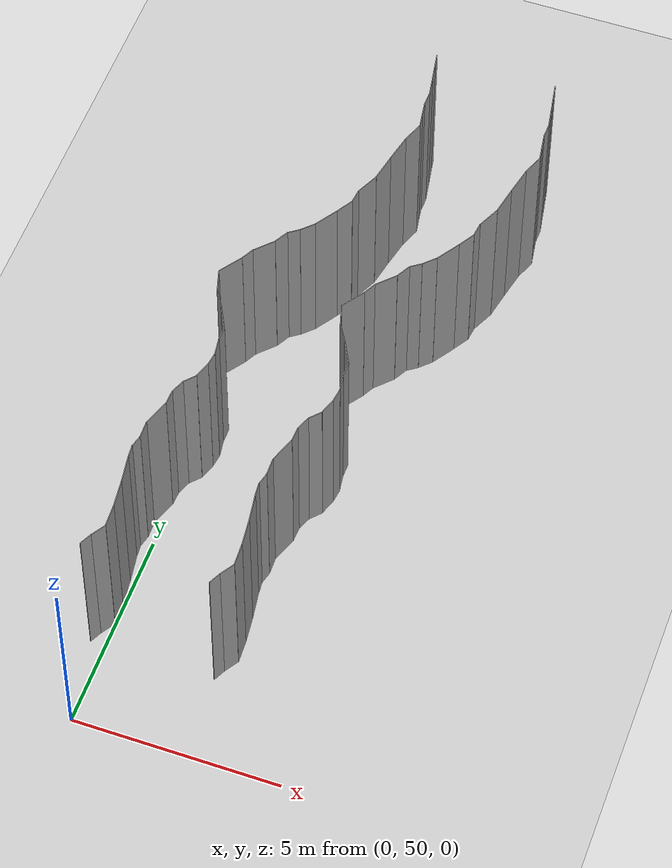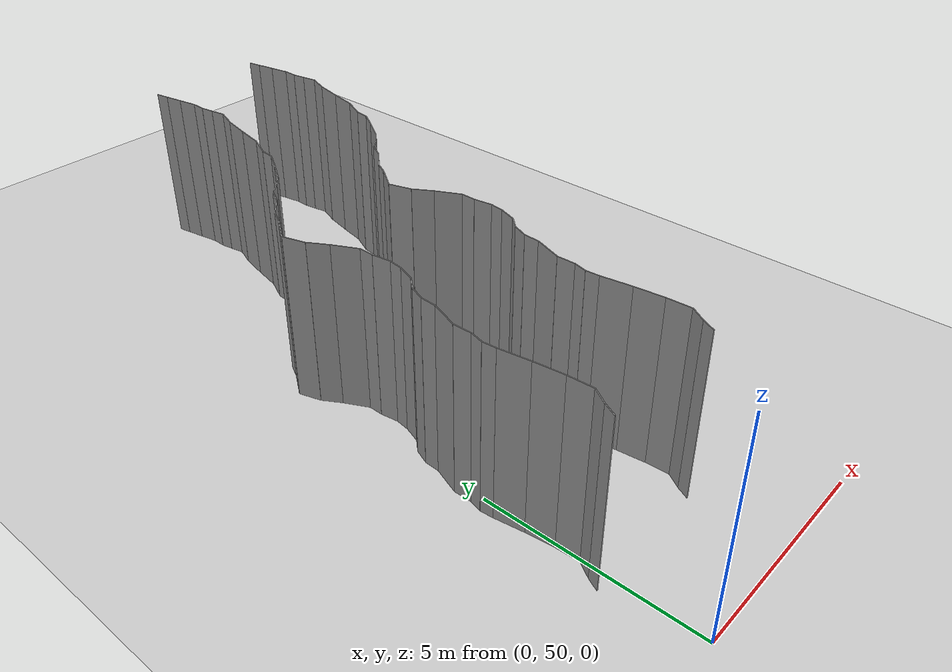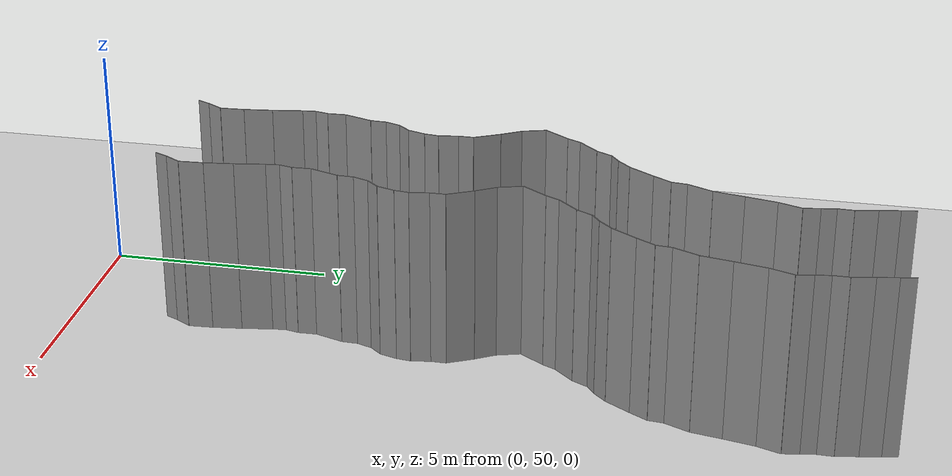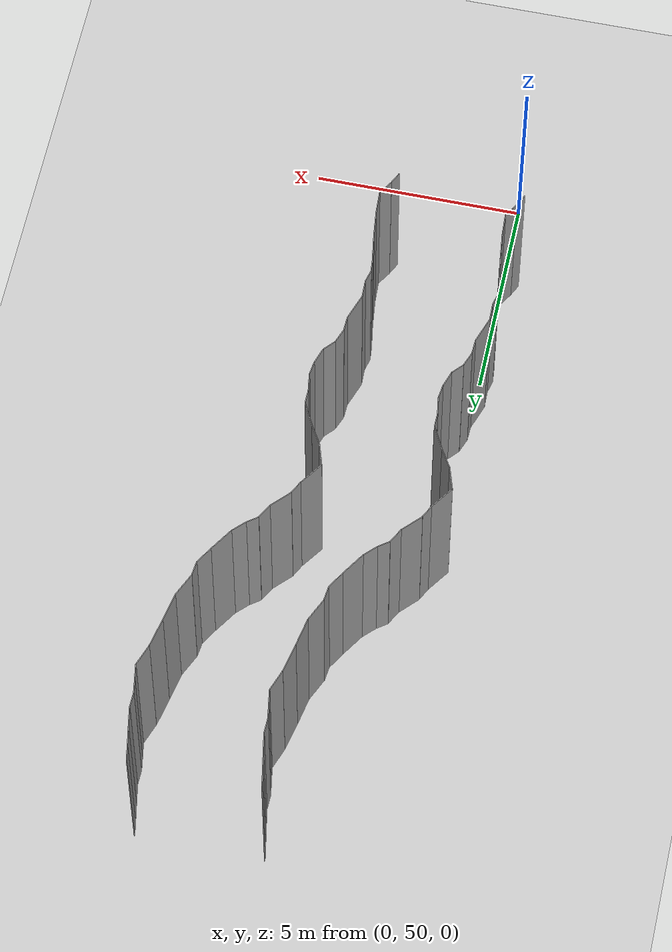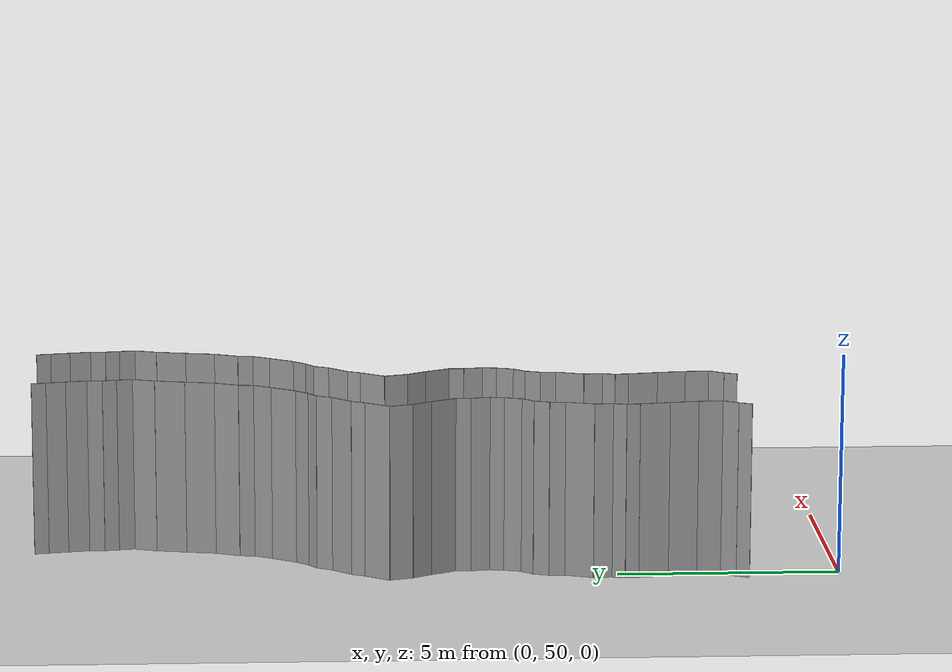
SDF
<sdf version="1.6">
 <world name="default">
  <model name="ground_plane">
   <static>1</static>
   <link name="link">
    <collision name="collision">
     <geometry><plane><normal>0 0 1</normal><size>200 200</size></plane></geometry>
     <surface><friction><ode><mu>100</mu><mu2>50</mu2></ode></friction></surface>
    </collision>
    <visual name="visual">
     <cast_shadows>0</cast_shadows>
     <geometry><plane><normal>0 0 1</normal><size>200 200</size></plane></geometry>
     <material>
      <script><uri>file://media/materials/scripts/gazebo.material</uri><name>Gazebo/Grey</name></script>
     </material>
    </visual>
   </link>
   <pose>0 100 0 0 -0 0</pose>
  </model>
  <model name="wall_224">
   <static>1</static>
   <pose>-0.30631447499122855 52.20543328603099 2 0 0 -0.44490276500342574</pose>
   <link name="link">
    <collision name="collision"><geometry><box><size>0.02 0.315287526318 4</size></box></geometry></collision>
    <visual name="visual">
     <material>
      <script><name>Gazebo/Grey</name><uri>file://media/materials/scripts/gazebo.material</uri></script>
     </material>
     <geometry><box><size>0.02 0.315287526318 4</size></box></geometry>
    </visual>
   </link>
  </model>
  <model name="wall_225">
   <static>1</static>
   <pose>2.6936855250087715 52.20543328603099 2 0 0 -0.44490276500342574</pose>
   <link name="link">
    <collision name="collision"><geometry><box><size>0.02 0.315287526318 4</size></box></geometry></collision>
    <visual name="visual">
     <material>
      <script><name>Gazebo/Grey</name><uri>file://media/materials/scripts/gazebo.material</uri></script>
     </material>
     <geometry><box><size>0.02 0.315287526318 4</size></box></geometry>
    </visual>
   </link>
  </model>
  <model name="wall_226">
   <static>1</static>
   <pose>-0.1345310852878407 52.51512437972214 2 0 0 -0.5556609495730785</pose>
   <link name="link">
    <collision name="collision"><geometry><box><size>0.02 0.394074899969 4</size></box></geometry></collision>
    <visual name="visual">
     <material>
      <script><name>Gazebo/Grey</name><uri>file://media/materials/scripts/gazebo.material</uri></script>
     </material>
     <geometry><box><size>0.02 0.394074899969 4</size></box></geometry>
    </visual>
   </link>
  </model>
  <model name="wall_227">
   <static>1</static>
   <pose>2.8654689147121593 52.51512437972214 2 0 0 -0.5556609495730785</pose>
   <link name="link">
    <collision name="collision"><geometry><box><size>0.02 0.394074899969 4</size></box></geometry></collision>
    <visual name="visual">
     <material>
      <script><name>Gazebo/Grey</name><uri>file://media/materials/scripts/gazebo.material</uri></script>
     </material>
     <geometry><box><size>0.02 0.394074899969 4</size></box></geometry>
    </visual>
   </link>
  </model>
  <model name="wall_228">
   <static>1</static>
   <pose>-0.04447228178769152 52.95406146435189 2 0 0 0.051068622639602185</pose>
   <link name="link">
    <collision name="collision"><geometry><box><size>0.02 0.543796018046 4</size></box></geometry></collision>
    <visual name="visual">
     <material>
      <script><name>Gazebo/Grey</name><uri>file://media/materials/scripts/gazebo.material</uri></script>
     </material>
     <geometry><box><size>0.02 0.543796018046 4</size></box></geometry>
    </visual>
   </link>
  </model>
  <model name="wall_229">
   <static>1</static>
   <pose>2.9555277182123083 52.95406146435189 2 0 0 0.051068622639602185</pose>
   <link name="link">
    <collision name="collision"><geometry><box><size>0.02 0.543796018046 4</size></box></geometry></collision>
    <visual name="visual">
     <material>
      <script><name>Gazebo/Grey</name><uri>file://media/materials/scripts/gazebo.material</uri></script>
     </material>
     <geometry><box><size>0.02 0.543796018046 4</size></box></geometry>
    </visual>
   </link>
  </model>
  <model name="wall_230">
   <static>1</static>
   <pose>-0.09727875012426282 53.54970367523044 2 0 0 0.1195360058832946</pose>
   <link name="link">
    <collision name="collision"><geometry><box><size>0.02 0.65285609305 4</size></box></geometry></collision>
    <visual name="visual">
     <material>
      <script><name>Gazebo/Grey</name><uri>file://media/materials/scripts/gazebo.material</uri></script>
     </material>
     <geometry><box><size>0.02 0.65285609305 4</size></box></geometry>
    </visual>
   </link>
  </model>
  <model name="wall_231">
   <static>1</static>
   <pose>2.902721249875737 53.54970367523044 2 0 0 0.1195360058832946</pose>
   <link name="link">
    <collision name="collision"><geometry><box><size>0.02 0.65285609305 4</size></box></geometry></collision>
    <visual name="visual">
     <material>
      <script><name>Gazebo/Grey</name><uri>file://media/materials/scripts/gazebo.material</uri></script>
     </material>
     <geometry><box><size>0.02 0.65285609305 4</size></box></geometry>
    </visual>
   </link>
  </model>
  <model name="wall_232">
   <static>1</static>
   <pose>-0.1903085652665202 54.21314556334102 2 0 0 0.1581031226667219</pose>
   <link name="link">
    <collision name="collision"><geometry><box><size>0.02 0.687258094835 4</size></box></geometry></collision>
    <visual name="visual">
     <material>
      <script><name>Gazebo/Grey</name><uri>file://media/materials/scripts/gazebo.material</uri></script>
     </material>
     <geometry><box><size>0.02 0.687258094835 4</size></box></geometry>
    </visual>
   </link>
  </model>
  <model name="wall_233">
   <static>1</static>
   <pose>2.80969143473348 54.21314556334102 2 0 0 0.1581031226667219</pose>
   <link name="link">
    <collision name="collision"><geometry><box><size>0.02 0.687258094835 4</size></box></geometry></collision>
    <visual name="visual">
     <material>
      <script><name>Gazebo/Grey</name><uri>file://media/materials/scripts/gazebo.material</uri></script>
     </material>
     <geometry><box><size>0.02 0.687258094835 4</size></box></geometry>
    </visual>
   </link>
  </model>
  <model name="wall_234">
   <static>1</static>
   <pose>-0.25813525373899315 54.70388334746676 2 0 0 0.09040292227828031</pose>
   <link name="link">
    <collision name="collision"><geometry><box><size>0.02 0.304030680901 4</size></box></geometry></collision>
    <visual name="visual">
     <material>
      <script><name>Gazebo/Grey</name><uri>file://media/materials/scripts/gazebo.material</uri></script>
     </material>
     <geometry><box><size>0.02 0.304030680901 4</size></box></geometry>
    </visual>
   </link>
  </model>
  <model name="wall_235">
   <static>1</static>
   <pose>2.741864746261007 54.70388334746676 2 0 0 0.09040292227828031</pose>
   <link name="link">
    <collision name="collision"><geometry><box><size>0.02 0.304030680901 4</size></box></geometry></collision>
    <visual name="visual">
     <material>
      <script><name>Gazebo/Grey</name><uri>file://media/materials/scripts/gazebo.material</uri></script>
     </material>
     <geometry><box><size>0.02 0.304030680901 4</size></box></geometry>
    </visual>
   </link>
  </model>
  <model name="wall_236">
   <static>1</static>
   <pose>-0.23547214054974813 55.00139825774106 2 0 0 -0.24405704668673625</pose>
   <link name="link">
    <collision name="collision"><geometry><box><size>0.02 0.301165523449 4</size></box></geometry></collision>
    <visual name="visual">
     <material>
      <script><name>Gazebo/Grey</name><uri>file://media/materials/scripts/gazebo.material</uri></script>
     </material>
     <geometry><box><size>0.02 0.301165523449 4</size></box></geometry>
    </visual>
   </link>
  </model>
  <model name="wall_237">
   <static>1</static>
   <pose>2.764527859450252 55.00139825774106 2 0 0 -0.24405704668673625</pose>
   <link name="link">
    <collision name="collision"><geometry><box><size>0.02 0.301165523449 4</size></box></geometry></collision>
    <visual name="visual">
     <material>
      <script><name>Gazebo/Grey</name><uri>file://media/materials/scripts/gazebo.material</uri></script>
     </material>
     <geometry><box><size>0.02 0.301165523449 4</size></box></geometry>
    </visual>
   </link>
  </model>
  <model name="wall_238">
   <static>1</static>
   <pose>-0.20504507567004446 55.356972045786776 2 0 0 0.028447180192829245</pose>
   <link name="link">
    <collision name="collision"><geometry><box><size>0.02 0.419076464054 4</size></box></geometry></collision>
    <visual name="visual">
     <material>
      <script><name>Gazebo/Grey</name><uri>file://media/materials/scripts/gazebo.material</uri></script>
     </material>
     <geometry><box><size>0.02 0.419076464054 4</size></box></geometry>
    </visual>
   </link>
  </model>
  <model name="wall_239">
   <static>1</static>
   <pose>2.7949549243299554 55.356972045786776 2 0 0 0.028447180192829245</pose>
   <link name="link">
    <collision name="collision"><geometry><box><size>0.02 0.419076464054 4</size></box></geometry></collision>
    <visual name="visual">
     <material>
      <script><name>Gazebo/Grey</name><uri>file://media/materials/scripts/gazebo.material</uri></script>
     </material>
     <geometry><box><size>0.02 0.419076464054 4</size></box></geometry>
    </visual>
   </link>
  </model>
  <model name="wall_240">
   <static>1</static>
   <pose>-0.10310642699677183 55.88046405516422 2 0 0 -0.33094759338901847</pose>
   <link name="link">
    <collision name="collision"><geometry><box><size>0.02 0.664115428585 4</size></box></geometry></collision>
    <visual name="visual">
     <material>
      <script><name>Gazebo/Grey</name><uri>file://media/materials/scripts/gazebo.material</uri></script>
     </material>
     <geometry><box><size>0.02 0.664115428585 4</size></box></geometry>
    </visual>
   </link>
  </model>
  <model name="wall_241">
   <static>1</static>
   <pose>2.8968935730032284 55.88046405516422 2 0 0 -0.33094759338901847</pose>
   <link name="link">
    <collision name="collision"><geometry><box><size>0.02 0.664115428585 4</size></box></geometry></collision>
    <visual name="visual">
     <material>
      <script><name>Gazebo/Grey</name><uri>file://media/materials/scripts/gazebo.material</uri></script>
     </material>
     <geometry><box><size>0.02 0.664115428585 4</size></box></geometry>
    </visual>
   </link>
  </model>
  <model name="wall_242">
   <static>1</static>
   <pose>0.01165887520163297 56.37254960566524 2 0 0 -0.038547598866512316</pose>
   <link name="link">
    <collision name="collision"><geometry><box><size>0.02 0.356358717609 4</size></box></geometry></collision>
    <visual name="visual">
     <material>
      <script><name>Gazebo/Grey</name><uri>file://media/materials/scripts/gazebo.material</uri></script>
     </material>
     <geometry><box><size>0.02 0.356358717609 4</size></box></geometry>
    </visual>
   </link>
  </model>
  <model name="wall_243">
   <static>1</static>
   <pose>3.011658875201633 56.37254960566524 2 0 0 -0.038547598866512316</pose>
   <link name="link">
    <collision name="collision"><geometry><box><size>0.02 0.356358717609 4</size></box></geometry></collision>
    <visual name="visual">
     <material>
      <script><name>Gazebo/Grey</name><uri>file://media/materials/scripts/gazebo.material</uri></script>
     </material>
     <geometry><box><size>0.02 0.356358717609 4</size></box></geometry>
    </visual>
   </link>
  </model>
  <model name="wall_244">
   <static>1</static>
   <pose>0.08224375856012531 56.72075654767262 2 0 0 -0.3582976981876601</pose>
   <link name="link">
    <collision name="collision"><geometry><box><size>0.02 0.363397392349 4</size></box></geometry></collision>
    <visual name="visual">
     <material>
      <script><name>Gazebo/Grey</name><uri>file://media/materials/scripts/gazebo.material</uri></script>
     </material>
     <geometry><box><size>0.02 0.363397392349 4</size></box></geometry>
    </visual>
   </link>
  </model>
  <model name="wall_245">
   <static>1</static>
   <pose>3.0822437585601254 56.72075654767262 2 0 0 -0.3582976981876601</pose>
   <link name="link">
    <collision name="collision"><geometry><box><size>0.02 0.363397392349 4</size></box></geometry></collision>
    <visual name="visual">
     <material>
      <script><name>Gazebo/Grey</name><uri>file://media/materials/scripts/gazebo.material</uri></script>
     </material>
     <geometry><box><size>0.02 0.363397392349 4</size></box></geometry>
    </visual>
   </link>
  </model>
  <model name="wall_246">
   <static>1</static>
   <pose>0.260150449192972 57.01874354561907 2 0 0 -0.7291036465761354</pose>
   <link name="link">
    <collision name="collision"><geometry><box><size>0.02 0.342804707853 4</size></box></geometry></collision>
    <visual name="visual">
     <material>
      <script><name>Gazebo/Grey</name><uri>file://media/materials/scripts/gazebo.material</uri></script>
     </material>
     <geometry><box><size>0.02 0.342804707853 4</size></box></geometry>
    </visual>
   </link>
  </model>
  <model name="wall_247">
   <static>1</static>
   <pose>3.260150449192972 57.01874354561907 2 0 0 -0.7291036465761354</pose>
   <link name="link">
    <collision name="collision"><geometry><box><size>0.02 0.342804707853 4</size></box></geometry></collision>
    <visual name="visual">
     <material>
      <script><name>Gazebo/Grey</name><uri>file://media/materials/scripts/gazebo.material</uri></script>
     </material>
     <geometry><box><size>0.02 0.342804707853 4</size></box></geometry>
    </visual>
   </link>
  </model>
  <model name="wall_248">
   <static>1</static>
   <pose>0.4374313532592991 57.34035171740209 2 0 0 -0.3147617840066052</pose>
   <link name="link">
    <collision name="collision"><geometry><box><size>0.02 0.407586923402 4</size></box></geometry></collision>
    <visual name="visual">
     <material>
      <script><name>Gazebo/Grey</name><uri>file://media/materials/scripts/gazebo.material</uri></script>
     </material>
     <geometry><box><size>0.02 0.407586923402 4</size></box></geometry>
    </visual>
   </link>
  </model>
  <model name="wall_249">
   <static>1</static>
   <pose>3.4374313532592993 57.34035171740209 2 0 0 -0.3147617840066052</pose>
   <link name="link">
    <collision name="collision"><geometry><box><size>0.02 0.407586923402 4</size></box></geometry></collision>
    <visual name="visual">
     <material>
      <script><name>Gazebo/Grey</name><uri>file://media/materials/scripts/gazebo.material</uri></script>
     </material>
     <geometry><box><size>0.02 0.407586923402 4</size></box></geometry>
    </visual>
   </link>
  </model>
  <model name="wall_250">
   <static>1</static>
   <pose>0.5214094997647015 57.69442478421184 2 0 0 -0.12956813423015023</pose>
   <link name="link">
    <collision name="collision"><geometry><box><size>0.02 0.323293810488 4</size></box></geometry></collision>
    <visual name="visual">
     <material>
      <script><name>Gazebo/Grey</name><uri>file://media/materials/scripts/gazebo.material</uri></script>
     </material>
     <geometry><box><size>0.02 0.323293810488 4</size></box></geometry>
    </visual>
   </link>
  </model>
  <model name="wall_251">
   <static>1</static>
   <pose>3.5214094997647014 57.69442478421184 2 0 0 -0.12956813423015023</pose>
   <link name="link">
    <collision name="collision"><geometry><box><size>0.02 0.323293810488 4</size></box></geometry></collision>
    <visual name="visual">
     <material>
      <script><name>Gazebo/Grey</name><uri>file://media/materials/scripts/gazebo.material</uri></script>
     </material>
     <geometry><box><size>0.02 0.323293810488 4</size></box></geometry>
    </visual>
   </link>
  </model>
  <model name="wall_252">
   <static>1</static>
   <pose>0.5095628894035702 58.06960914433923 2 0 0 0.15115781658733884</pose>
   <link name="link">
    <collision name="collision"><geometry><box><size>0.02 0.434742020015 4</size></box></geometry></collision>
    <visual name="visual">
     <material>
      <script><name>Gazebo/Grey</name><uri>file://media/materials/scripts/gazebo.material</uri></script>
     </material>
     <geometry><box><size>0.02 0.434742020015 4</size></box></geometry>
    </visual>
   </link>
  </model>
  <model name="wall_253">
   <static>1</static>
   <pose>3.50956288940357 58.06960914433923 2 0 0 0.15115781658733884</pose>
   <link name="link">
    <collision name="collision"><geometry><box><size>0.02 0.434742020015 4</size></box></geometry></collision>
    <visual name="visual">
     <material>
      <script><name>Gazebo/Grey</name><uri>file://media/materials/scripts/gazebo.material</uri></script>
     </material>
     <geometry><box><size>0.02 0.434742020015 4</size></box></geometry>
    </visual>
   </link>
  </model>
  <model name="wall_254">
   <static>1</static>
   <pose>0.4778656257593741 58.45483736449687 2 0 0 -0.006076639507662194</pose>
   <link name="link">
    <collision name="collision"><geometry><box><size>0.02 0.340677902417 4</size></box></geometry></collision>
    <visual name="visual">
     <material>
      <script><name>Gazebo/Grey</name><uri>file://media/materials/scripts/gazebo.material</uri></script>
     </material>
     <geometry><box><size>0.02 0.340677902417 4</size></box></geometry>
    </visual>
   </link>
  </model>
  <model name="wall_255">
   <static>1</static>
   <pose>3.477865625759374 58.45483736449687 2 0 0 -0.006076639507662194</pose>
   <link name="link">
    <collision name="collision"><geometry><box><size>0.02 0.340677902417 4</size></box></geometry></collision>
    <visual name="visual">
     <material>
      <script><name>Gazebo/Grey</name><uri>file://media/materials/scripts/gazebo.material</uri></script>
     </material>
     <geometry><box><size>0.02 0.340677902417 4</size></box></geometry>
    </visual>
   </link>
  </model>
  <model name="wall_256">
   <static>1</static>
   <pose>0.3364900619468557 58.9031493179931 2 0 0 0.47344899576483884</pose>
   <link name="link">
    <collision name="collision"><geometry><box><size>0.02 0.624664807607 4</size></box></geometry></collision>
    <visual name="visual">
     <material>
      <script><name>Gazebo/Grey</name><uri>file://media/materials/scripts/gazebo.material</uri></script>
     </material>
     <geometry><box><size>0.02 0.624664807607 4</size></box></geometry>
    </visual>
   </link>
  </model>
  <model name="wall_257">
   <static>1</static>
   <pose>3.3364900619468556 58.9031493179931 2 0 0 0.47344899576483884</pose>
   <link name="link">
    <collision name="collision"><geometry><box><size>0.02 0.624664807607 4</size></box></geometry></collision>
    <visual name="visual">
     <material>
      <script><name>Gazebo/Grey</name><uri>file://media/materials/scripts/gazebo.material</uri></script>
     </material>
     <geometry><box><size>0.02 0.624664807607 4</size></box></geometry>
    </visual>
   </link>
  </model>
  <model name="wall_258">
   <static>1</static>
   <pose>0.06385456200103967 59.394824109715124 2 0 0 0.5472920334972555</pose>
   <link name="link">
    <collision name="collision"><geometry><box><size>0.02 0.500502240928 4</size></box></geometry></collision>
    <visual name="visual">
     <material>
      <script><name>Gazebo/Grey</name><uri>file://media/materials/scripts/gazebo.material</uri></script>
     </material>
     <geometry><box><size>0.02 0.500502240928 4</size></box></geometry>
    </visual>
   </link>
  </model>
  <model name="wall_259">
   <static>1</static>
   <pose>3.0638545620010396 59.394824109715124 2 0 0 0.5472920334972555</pose>
   <link name="link">
    <collision name="collision"><geometry><box><size>0.02 0.500502240928 4</size></box></geometry></collision>
    <visual name="visual">
     <material>
      <script><name>Gazebo/Grey</name><uri>file://media/materials/scripts/gazebo.material</uri></script>
     </material>
     <geometry><box><size>0.02 0.500502240928 4</size></box></geometry>
    </visual>
   </link>
  </model>
  <model name="wall_260">
   <static>1</static>
   <pose>-0.14617352501708986 59.86983159774324 2 0 0 0.2964018226503567</pose>
   <link name="link">
    <collision name="collision"><geometry><box><size>0.02 0.546446219429 4</size></box></geometry></collision>
    <visual name="visual">
     <material>
      <script><name>Gazebo/Grey</name><uri>file://media/materials/scripts/gazebo.material</uri></script>
     </material>
     <geometry><box><size>0.02 0.546446219429 4</size></box></geometry>
    </visual>
   </link>
  </model>
  <model name="wall_261">
   <static>1</static>
   <pose>2.85382647498291 59.86983159774324 2 0 0 0.2964018226503567</pose>
   <link name="link">
    <collision name="collision"><geometry><box><size>0.02 0.546446219429 4</size></box></geometry></collision>
    <visual name="visual">
     <material>
      <script><name>Gazebo/Grey</name><uri>file://media/materials/scripts/gazebo.material</uri></script>
     </material>
     <geometry><box><size>0.02 0.546446219429 4</size></box></geometry>
    </visual>
   </link>
  </model>
  <model name="wall_262">
   <static>1</static>
   <pose>-0.04127766490020762 60.40090050460175 2 0 0 -0.6003693437621271</pose>
   <link name="link">
    <collision name="collision"><geometry><box><size>0.02 0.653863125563 4</size></box></geometry></collision>
    <visual name="visual">
     <material>
      <script><name>Gazebo/Grey</name><uri>file://media/materials/scripts/gazebo.material</uri></script>
     </material>
     <geometry><box><size>0.02 0.653863125563 4</size></box></geometry>
    </visual>
   </link>
  </model>
  <model name="wall_263">
   <static>1</static>
   <pose>2.958722335099792 60.40090050460175 2 0 0 -0.6003693437621271</pose>
   <link name="link">
    <collision name="collision"><geometry><box><size>0.02 0.653863125563 4</size></box></geometry></collision>
    <visual name="visual">
     <material>
      <script><name>Gazebo/Grey</name><uri>file://media/materials/scripts/gazebo.material</uri></script>
     </material>
     <geometry><box><size>0.02 0.653863125563 4</size></box></geometry>
    </visual>
   </link>
  </model>
  <model name="wall_264">
   <static>1</static>
   <pose>0.21723717038243295 60.818456106904605 2 0 0 -0.46320350662615006</pose>
   <link name="link">
    <collision name="collision"><geometry><box><size>0.02 0.33040753708 4</size></box></geometry></collision>
    <visual name="visual">
     <material>
      <script><name>Gazebo/Grey</name><uri>file://media/materials/scripts/gazebo.material</uri></script>
     </material>
     <geometry><box><size>0.02 0.33040753708 4</size></box></geometry>
    </visual>
   </link>
  </model>
  <model name="wall_265">
   <static>1</static>
   <pose>3.217237170382433 60.818456106904605 2 0 0 -0.46320350662615006</pose>
   <link name="link">
    <collision name="collision"><geometry><box><size>0.02 0.33040753708 4</size></box></geometry></collision>
    <visual name="visual">
     <material>
      <script><name>Gazebo/Grey</name><uri>file://media/materials/scripts/gazebo.material</uri></script>
     </material>
     <geometry><box><size>0.02 0.33040753708 4</size></box></geometry>
    </visual>
   </link>
  </model>
  <model name="wall_266">
   <static>1</static>
   <pose>0.4900155125490804 61.17715507873156 2 0 0 -0.7562728994984368</pose>
   <link name="link">
    <collision name="collision"><geometry><box><size>0.02 0.57988403724 4</size></box></geometry></collision>
    <visual name="visual">
     <material>
      <script><name>Gazebo/Grey</name><uri>file://media/materials/scripts/gazebo.material</uri></script>
     </material>
     <geometry><box><size>0.02 0.57988403724 4</size></box></geometry>
    </visual>
   </link>
  </model>
  <model name="wall_267">
   <static>1</static>
   <pose>3.49001551254908 61.17715507873156 2 0 0 -0.7562728994984368</pose>
   <link name="link">
    <collision name="collision"><geometry><box><size>0.02 0.57988403724 4</size></box></geometry></collision>
    <visual name="visual">
     <material>
      <script><name>Gazebo/Grey</name><uri>file://media/materials/scripts/gazebo.material</uri></script>
     </material>
     <geometry><box><size>0.02 0.57988403724 4</size></box></geometry>
    </visual>
   </link>
  </model>
  <model name="wall_268">
   <static>1</static>
   <pose>0.780315651190794 61.56080549008781 2 0 0 -0.4863712224990478</pose>
   <link name="link">
    <collision name="collision"><geometry><box><size>0.02 0.390814864389 4</size></box></geometry></collision>
    <visual name="visual">
     <material>
      <script><name>Gazebo/Grey</name><uri>file://media/materials/scripts/gazebo.material</uri></script>
     </material>
     <geometry><box><size>0.02 0.390814864389 4</size></box></geometry>
    </visual>
   </link>
  </model>
  <model name="wall_269">
   <static>1</static>
   <pose>3.780315651190794 61.56080549008781 2 0 0 -0.4863712224990478</pose>
   <link name="link">
    <collision name="collision"><geometry><box><size>0.02 0.390814864389 4</size></box></geometry></collision>
    <visual name="visual">
     <material>
      <script><name>Gazebo/Grey</name><uri>file://media/materials/scripts/gazebo.material</uri></script>
     </material>
     <geometry><box><size>0.02 0.390814864389 4</size></box></geometry>
    </visual>
   </link>
  </model>
  <model name="wall_270">
   <static>1</static>
   <pose>0.9940594384632935 61.822312904432174 2 0 0 -0.9434029670952521</pose>
   <link name="link">
    <collision name="collision"><geometry><box><size>0.02 0.302401750371 4</size></box></geometry></collision>
    <visual name="visual">
     <material>
      <script><name>Gazebo/Grey</name><uri>file://media/materials/scripts/gazebo.material</uri></script>
     </material>
     <geometry><box><size>0.02 0.302401750371 4</size></box></geometry>
    </visual>
   </link>
  </model>
  <model name="wall_271">
   <static>1</static>
   <pose>3.9940594384632933 61.822312904432174 2 0 0 -0.9434029670952521</pose>
   <link name="link">
    <collision name="collision"><geometry><box><size>0.02 0.302401750371 4</size></box></geometry></collision>
    <visual name="visual">
     <material>
      <script><name>Gazebo/Grey</name><uri>file://media/materials/scripts/gazebo.material</uri></script>
     </material>
     <geometry><box><size>0.02 0.302401750371 4</size></box></geometry>
    </visual>
   </link>
  </model>
  <model name="wall_272">
   <static>1</static>
   <pose>1.253361583485668 62.05023820674691 2 0 0 -0.7771792522138435</pose>
   <link name="link">
    <collision name="collision"><geometry><box><size>0.02 0.390422061508 4</size></box></geometry></collision>
    <visual name="visual">
     <material>
      <script><name>Gazebo/Grey</name><uri>file://media/materials/scripts/gazebo.material</uri></script>
     </material>
     <geometry><box><size>0.02 0.390422061508 4</size></box></geometry>
    </visual>
   </link>
  </model>
  <model name="wall_273">
   <static>1</static>
   <pose>4.253361583485668 62.05023820674691 2 0 0 -0.7771792522138435</pose>
   <link name="link">
    <collision name="collision"><geometry><box><size>0.02 0.390422061508 4</size></box></geometry></collision>
    <visual name="visual">
     <material>
      <script><name>Gazebo/Grey</name><uri>file://media/materials/scripts/gazebo.material</uri></script>
     </material>
     <geometry><box><size>0.02 0.390422061508 4</size></box></geometry>
    </visual>
   </link>
  </model>
  <model name="wall_274">
   <static>1</static>
   <pose>1.5651647137102727 62.46179472512344 2 0 0 -0.5708133931814451</pose>
   <link name="link">
    <collision name="collision"><geometry><box><size>0.02 0.647424906697 4</size></box></geometry></collision>
    <visual name="visual">
     <material>
      <script><name>Gazebo/Grey</name><uri>file://media/materials/scripts/gazebo.material</uri></script>
     </material>
     <geometry><box><size>0.02 0.647424906697 4</size></box></geometry>
    </visual>
   </link>
  </model>
  <model name="wall_275">
   <static>1</static>
   <pose>4.565164713710272 62.46179472512344 2 0 0 -0.5708133931814451</pose>
   <link name="link">
    <collision name="collision"><geometry><box><size>0.02 0.647424906697 4</size></box></geometry></collision>
    <visual name="visual">
     <material>
      <script><name>Gazebo/Grey</name><uri>file://media/materials/scripts/gazebo.material</uri></script>
     </material>
     <geometry><box><size>0.02 0.647424906697 4</size></box></geometry>
    </visual>
   </link>
  </model>
  <model name="wall_276">
   <static>1</static>
   <pose>1.8559316254044356 62.931396078146555 2 0 0 -0.5311737687123347</pose>
   <link name="link">
    <collision name="collision"><geometry><box><size>0.02 0.4574500243 4</size></box></geometry></collision>
    <visual name="visual">
     <material>
      <script><name>Gazebo/Grey</name><uri>file://media/materials/scripts/gazebo.material</uri></script>
     </material>
     <geometry><box><size>0.02 0.4574500243 4</size></box></geometry>
    </visual>
   </link>
  </model>
  <model name="wall_277">
   <static>1</static>
   <pose>4.855931625404436 62.931396078146555 2 0 0 -0.5311737687123347</pose>
   <link name="link">
    <collision name="collision"><geometry><box><size>0.02 0.4574500243 4</size></box></geometry></collision>
    <visual name="visual">
     <material>
      <script><name>Gazebo/Grey</name><uri>file://media/materials/scripts/gazebo.material</uri></script>
     </material>
     <geometry><box><size>0.02 0.4574500243 4</size></box></geometry>
    </visual>
   </link>
  </model>
  <model name="wall_278">
   <static>1</static>
   <pose>1.9909777393986448 63.301707676985735 2 0 0 -0.11038839082901103</pose>
   <link name="link">
    <collision name="collision"><geometry><box><size>0.02 0.348323908612 4</size></box></geometry></collision>
    <visual name="visual">
     <material>
      <script><name>Gazebo/Grey</name><uri>file://media/materials/scripts/gazebo.material</uri></script>
     </material>
     <geometry><box><size>0.02 0.348323908612 4</size></box></geometry>
    </visual>
   </link>
  </model>
  <model name="wall_279">
   <static>1</static>
   <pose>4.9909777393986445 63.301707676985735 2 0 0 -0.11038839082901103</pose>
   <link name="link">
    <collision name="collision"><geometry><box><size>0.02 0.348323908612 4</size></box></geometry></collision>
    <visual name="visual">
     <material>
      <script><name>Gazebo/Grey</name><uri>file://media/materials/scripts/gazebo.material</uri></script>
     </material>
     <geometry><box><size>0.02 0.348323908612 4</size></box></geometry>
    </visual>
   </link>
  </model>
  <model name="wall_280">
   <static>1</static>
   <pose>2.1323745646332517 63.74696746409847 2 0 0 -0.4220571694889168</pose>
   <link name="link">
    <collision name="collision"><geometry><box><size>0.02 0.596675107493 4</size></box></geometry></collision>
    <visual name="visual">
     <material>
      <script><name>Gazebo/Grey</name><uri>file://media/materials/scripts/gazebo.material</uri></script>
     </material>
     <geometry><box><size>0.02 0.596675107493 4</size></box></geometry>
    </visual>
   </link>
  </model>
  <model name="wall_281">
   <static>1</static>
   <pose>5.132374564633252 63.74696746409847 2 0 0 -0.4220571694889168</pose>
   <link name="link">
    <collision name="collision"><geometry><box><size>0.02 0.596675107493 4</size></box></geometry></collision>
    <visual name="visual">
     <material>
      <script><name>Gazebo/Grey</name><uri>file://media/materials/scripts/gazebo.material</uri></script>
     </material>
     <geometry><box><size>0.02 0.596675107493 4</size></box></geometry>
    </visual>
   </link>
  </model>
  <model name="wall_282">
   <static>1</static>
   <pose>2.3188038227020438 64.35556304195104 2 0 0 -0.18861012405601785</pose>
   <link name="link">
    <collision name="collision"><geometry><box><size>0.02 0.685023740748 4</size></box></geometry></collision>
    <visual name="visual">
     <material>
      <script><name>Gazebo/Grey</name><uri>file://media/materials/scripts/gazebo.material</uri></script>
     </material>
     <geometry><box><size>0.02 0.685023740748 4</size></box></geometry>
    </visual>
   </link>
  </model>
  <model name="wall_283">
   <static>1</static>
   <pose>5.318803822702044 64.35556304195104 2 0 0 -0.18861012405601785</pose>
   <link name="link">
    <collision name="collision"><geometry><box><size>0.02 0.685023740748 4</size></box></geometry></collision>
    <visual name="visual">
     <material>
      <script><name>Gazebo/Grey</name><uri>file://media/materials/scripts/gazebo.material</uri></script>
     </material>
     <geometry><box><size>0.02 0.685023740748 4</size></box></geometry>
    </visual>
   </link>
  </model>
  <model name="wall_284">
   <static>1</static>
   <pose>2.455558215131127 65.03354843205202 2 0 0 -0.20926391472801925</pose>
   <link name="link">
    <collision name="collision"><geometry><box><size>0.02 0.698330107219 4</size></box></geometry></collision>
    <visual name="visual">
     <material>
      <script><name>Gazebo/Grey</name><uri>file://media/materials/scripts/gazebo.material</uri></script>
     </material>
     <geometry><box><size>0.02 0.698330107219 4</size></box></geometry>
    </visual>
   </link>
  </model>
  <model name="wall_285">
   <static>1</static>
   <pose>5.455558215131127 65.03354843205202 2 0 0 -0.20926391472801925</pose>
   <link name="link">
    <collision name="collision"><geometry><box><size>0.02 0.698330107219 4</size></box></geometry></collision>
    <visual name="visual">
     <material>
      <script><name>Gazebo/Grey</name><uri>file://media/materials/scripts/gazebo.material</uri></script>
     </material>
     <geometry><box><size>0.02 0.698330107219 4</size></box></geometry>
    </visual>
   </link>
  </model>
  <model name="wall_286">
   <static>1</static>
   <pose>2.619650465238756 65.62873988475101 2 0 0 -0.34641033476675764</pose>
   <link name="link">
    <collision name="collision"><geometry><box><size>0.02 0.53932471346 4</size></box></geometry></collision>
    <visual name="visual">
     <material>
      <script><name>Gazebo/Grey</name><uri>file://media/materials/scripts/gazebo.material</uri></script>
     </material>
     <geometry><box><size>0.02 0.53932471346 4</size></box></geometry>
    </visual>
   </link>
  </model>
  <model name="wall_287">
   <static>1</static>
   <pose>5.619650465238756 65.62873988475101 2 0 0 -0.34641033476675764</pose>
   <link name="link">
    <collision name="collision"><geometry><box><size>0.02 0.53932471346 4</size></box></geometry></collision>
    <visual name="visual">
     <material>
      <script><name>Gazebo/Grey</name><uri>file://media/materials/scripts/gazebo.material</uri></script>
     </material>
     <geometry><box><size>0.02 0.53932471346 4</size></box></geometry>
    </visual>
   </link>
  </model>
  <model name="wall_288">
   <static>1</static>
   <pose>2.679997388778439 66.06381279940186 2 0 0 0.17035467946990843</pose>
   <link name="link">
    <collision name="collision"><geometry><box><size>0.02 0.368187958528 4</size></box></geometry></collision>
    <visual name="visual">
     <material>
      <script><name>Gazebo/Grey</name><uri>file://media/materials/scripts/gazebo.material</uri></script>
     </material>
     <geometry><box><size>0.02 0.368187958528 4</size></box></geometry>
    </visual>
   </link>
  </model>
  <model name="wall_289">
   <static>1</static>
   <pose>5.679997388778439 66.06381279940186 2 0 0 0.17035467946990843</pose>
   <link name="link">
    <collision name="collision"><geometry><box><size>0.02 0.368187958528 4</size></box></geometry></collision>
    <visual name="visual">
     <material>
      <script><name>Gazebo/Grey</name><uri>file://media/materials/scripts/gazebo.material</uri></script>
     </material>
     <geometry><box><size>0.02 0.368187958528 4</size></box></geometry>
    </visual>
   </link>
  </model>
  <model name="wall_290">
   <static>1</static>
   <pose>2.622266345864018 66.40765905908228 2 0 0 0.16186239705557756</pose>
   <link name="link">
    <collision name="collision"><geometry><box><size>0.02 0.32913638068 4</size></box></geometry></collision>
    <visual name="visual">
     <material>
      <script><name>Gazebo/Grey</name><uri>file://media/materials/scripts/gazebo.material</uri></script>
     </material>
     <geometry><box><size>0.02 0.32913638068 4</size></box></geometry>
    </visual>
   </link>
  </model>
  <model name="wall_291">
   <static>1</static>
   <pose>5.622266345864018 66.40765905908228 2 0 0 0.16186239705557756</pose>
   <link name="link">
    <collision name="collision"><geometry><box><size>0.02 0.32913638068 4</size></box></geometry></collision>
    <visual name="visual">
     <material>
      <script><name>Gazebo/Grey</name><uri>file://media/materials/scripts/gazebo.material</uri></script>
     </material>
     <geometry><box><size>0.02 0.32913638068 4</size></box></geometry>
    </visual>
   </link>
  </model>
  <model name="wall_292">
   <static>1</static>
   <pose>2.599532064095755 66.74469995194058 2 0 0 -0.02168298189620201</pose>
   <link name="link">
    <collision name="collision"><geometry><box><size>0.02 0.349329709273 4</size></box></geometry></collision>
    <visual name="visual">
     <material>
      <script><name>Gazebo/Grey</name><uri>file://media/materials/scripts/gazebo.material</uri></script>
     </material>
     <geometry><box><size>0.02 0.349329709273 4</size></box></geometry>
    </visual>
   </link>
  </model>
  <model name="wall_293">
   <static>1</static>
   <pose>5.599532064095754 66.74469995194058 2 0 0 -0.02168298189620201</pose>
   <link name="link">
    <collision name="collision"><geometry><box><size>0.02 0.349329709273 4</size></box></geometry></collision>
    <visual name="visual">
     <material>
      <script><name>Gazebo/Grey</name><uri>file://media/materials/scripts/gazebo.material</uri></script>
     </material>
     <geometry><box><size>0.02 0.349329709273 4</size></box></geometry>
    </visual>
   </link>
  </model>
  <model name="wall_294">
   <static>1</static>
   <pose>2.559403751533522 67.15923552623238 2 0 0 0.1810433008208945</pose>
   <link name="link">
    <collision name="collision"><geometry><box><size>0.02 0.487795908142 4</size></box></geometry></collision>
    <visual name="visual">
     <material>
      <script><name>Gazebo/Grey</name><uri>file://media/materials/scripts/gazebo.material</uri></script>
     </material>
     <geometry><box><size>0.02 0.487795908142 4</size></box></geometry>
    </visual>
   </link>
  </model>
  <model name="wall_295">
   <static>1</static>
   <pose>5.559403751533522 67.15923552623238 2 0 0 0.1810433008208945</pose>
   <link name="link">
    <collision name="collision"><geometry><box><size>0.02 0.487795908142 4</size></box></geometry></collision>
    <visual name="visual">
     <material>
      <script><name>Gazebo/Grey</name><uri>file://media/materials/scripts/gazebo.material</uri></script>
     </material>
     <geometry><box><size>0.02 0.487795908142 4</size></box></geometry>
    </visual>
   </link>
  </model>
  <model name="wall_296">
   <static>1</static>
   <pose>2.47393664582987 67.62079975484114 2 0 0 0.185313084935648</pose>
   <link name="link">
    <collision name="collision"><geometry><box><size>0.02 0.451027112533 4</size></box></geometry></collision>
    <visual name="visual">
     <material>
      <script><name>Gazebo/Grey</name><uri>file://media/materials/scripts/gazebo.material</uri></script>
     </material>
     <geometry><box><size>0.02 0.451027112533 4</size></box></geometry>
    </visual>
   </link>
  </model>
  <model name="wall_297">
   <static>1</static>
   <pose>5.47393664582987 67.62079975484114 2 0 0 0.185313084935648</pose>
   <link name="link">
    <collision name="collision"><geometry><box><size>0.02 0.451027112533 4</size></box></geometry></collision>
    <visual name="visual">
     <material>
      <script><name>Gazebo/Grey</name><uri>file://media/materials/scripts/gazebo.material</uri></script>
     </material>
     <geometry><box><size>0.02 0.451027112533 4</size></box></geometry>
    </visual>
   </link>
  </model>
  <model name="wall_298">
   <static>1</static>
   <pose>2.4030380399056495 68.00606352872406 2 0 0 0.17748150535455273</pose>
   <link name="link">
    <collision name="collision"><geometry><box><size>0.02 0.332444870102 4</size></box></geometry></collision>
    <visual name="visual">
     <material>
      <script><name>Gazebo/Grey</name><uri>file://media/materials/scripts/gazebo.material</uri></script>
     </material>
     <geometry><box><size>0.02 0.332444870102 4</size></box></geometry>
    </visual>
   </link>
  </model>
  <model name="wall_299">
   <static>1</static>
   <pose>5.403038039905649 68.00606352872406 2 0 0 0.17748150535455273</pose>
   <link name="link">
    <collision name="collision"><geometry><box><size>0.02 0.332444870102 4</size></box></geometry></collision>
    <visual name="visual">
     <material>
      <script><name>Gazebo/Grey</name><uri>file://media/materials/scripts/gazebo.material</uri></script>
     </material>
     <geometry><box><size>0.02 0.332444870102 4</size></box></geometry>
    </visual>
   </link>
  </model>
 </world>
</sdf>
